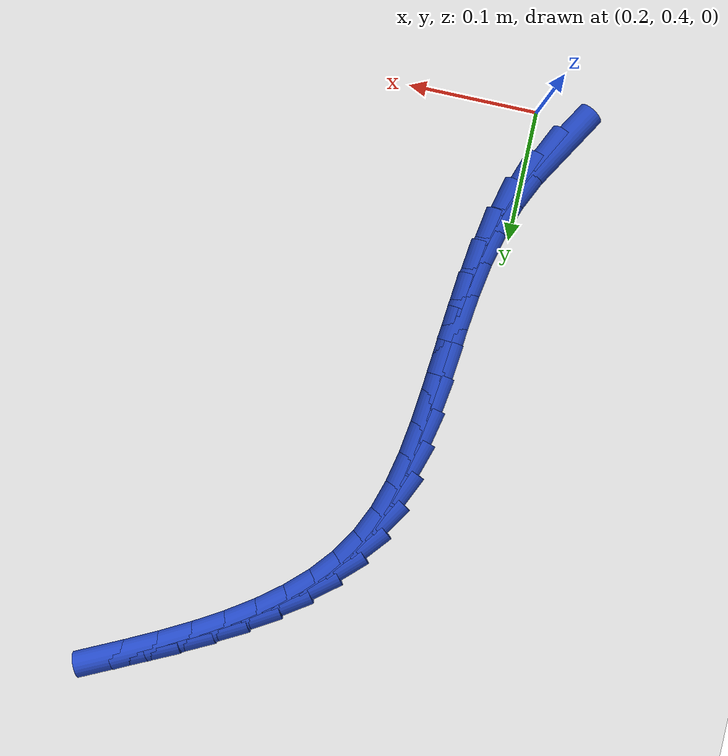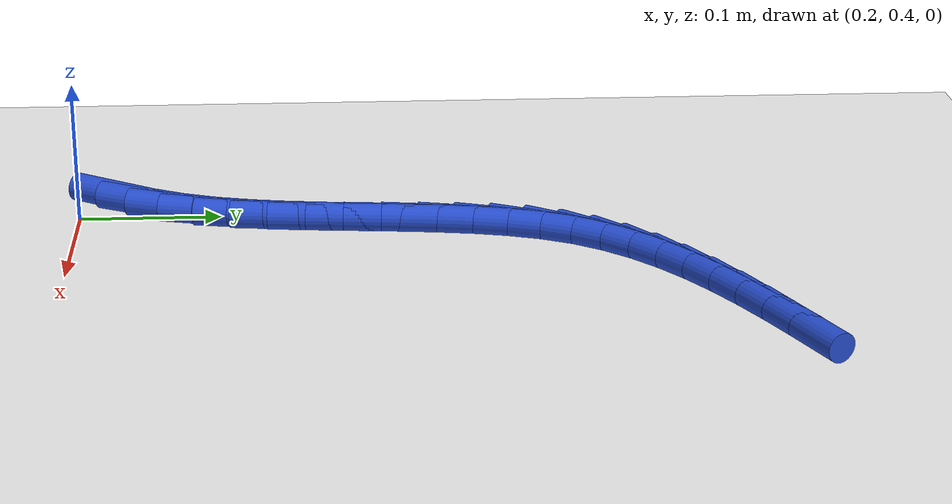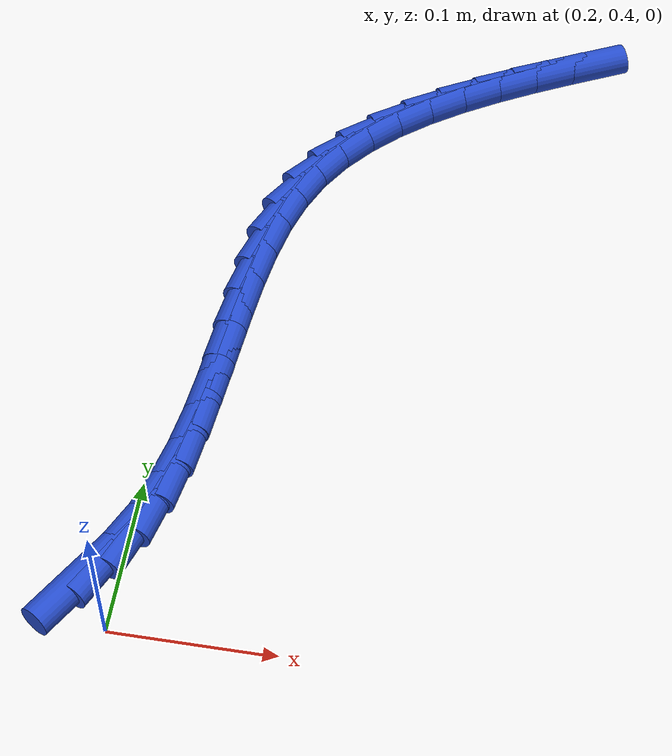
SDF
<sdf version="1.6">
 <world name="default">
  <model name="ground_plane">
   <static>1</static>
   <link name="link">
    <collision name="collision">
     <geometry><plane><normal>0 0 1</normal><size>100 100</size></plane></geometry>
     <surface><friction><ode><mu>100</mu><mu2>50</mu2></ode></friction></surface>
    </collision>
    <visual name="visual">
     <cast_shadows>0</cast_shadows>
     <geometry><plane><normal>0 0 1</normal><size>100 100</size></plane></geometry>
     <material>
      <script><uri>file://media/materials/scripts/gazebo.material</uri><name>Gazebo/WhiteGlow</name></script>
     </material>
    </visual>
   </link>
  </model>
  <model name="line">
   <link name="link_19">
    <pose>0.181550273171399 0.42856259229445404 0.01 0 1.57 1.0265691454415318</pose>
    <collision name="collision">
     <geometry><cylinder><radius>0.01</radius><length>0.08</length></cylinder></geometry>
    </collision>
    <visual name="visual">
     <material>
      <script><name>Gazebo/Blue</name><uri>file://media/materials/scripts/gazebo.material</uri></script>
     </material>
     <geometry><cylinder><radius>0.01</radius><length>0.08</length></cylinder></geometry>
    </visual>
   </link>
   <link name="link_20">
    <pose>0.19459256234999442 0.45011331534589893 0.01 0 1.57 1.1295042287333261</pose>
    <collision name="collision">
     <geometry><cylinder><radius>0.01</radius><length>0.08</length></cylinder></geometry>
    </collision>
    <visual name="visual">
     <material>
      <script><name>Gazebo/Blue</name><uri>file://media/materials/scripts/gazebo.material</uri></script>
     </material>
     <geometry><cylinder><radius>0.01</radius><length>0.08</length></cylinder></geometry>
    </visual>
   </link>
   <link name="link_21">
    <pose>0.20531575054510487 0.4728146217601626 0.01 0 1.57 1.2436033963603357</pose>
    <collision name="collision">
     <geometry><cylinder><radius>0.01</radius><length>0.08</length></cylinder></geometry>
    </collision>
    <visual name="visual">
     <material>
      <script><name>Gazebo/Blue</name><uri>file://media/materials/scripts/gazebo.material</uri></script>
     </material>
     <geometry><cylinder><radius>0.01</radius><length>0.08</length></cylinder></geometry>
    </visual>
   </link>
   <link name="link_22">
    <pose>0.213451697641281 0.4967867833108267 0.01 0 1.57 1.3380486251099197</pose>
    <collision name="collision">
     <geometry><cylinder><radius>0.01</radius><length>0.08</length></cylinder></geometry>
    </collision>
    <visual name="visual">
     <material>
      <script><name>Gazebo/Blue</name><uri>file://media/materials/scripts/gazebo.material</uri></script>
     </material>
     <geometry><cylinder><radius>0.01</radius><length>0.08</length></cylinder></geometry>
    </visual>
   </link>
   <link name="link_23">
    <pose>0.21938400579576403 0.5218130180876943 0.01 0 1.57 1.4073494618705584</pose>
    <collision name="collision">
     <geometry><cylinder><radius>0.01</radius><length>0.08</length></cylinder></geometry>
    </collision>
    <visual name="visual">
     <material>
      <script><name>Gazebo/Blue</name><uri>file://media/materials/scripts/gazebo.material</uri></script>
     </material>
     <geometry><cylinder><radius>0.01</radius><length>0.08</length></cylinder></geometry>
    </visual>
   </link>
   <link name="link_24">
    <pose>0.2236373378716247 0.5476035935181236 0.01 0 1.57 1.453349717159858</pose>
    <collision name="collision">
     <geometry><cylinder><radius>0.01</radius><length>0.08</length></cylinder></geometry>
    </collision>
    <visual name="visual">
     <material>
      <script><name>Gazebo/Blue</name><uri>file://media/materials/scripts/gazebo.material</uri></script>
     </material>
     <geometry><cylinder><radius>0.01</radius><length>0.08</length></cylinder></geometry>
    </visual>
   </link>
   <link name="link_25">
    <pose>0.2267363567319338 0.573868777029472 0.01 0 1.57 1.4777064991671223</pose>
    <collision name="collision">
     <geometry><cylinder><radius>0.01</radius><length>0.08</length></cylinder></geometry>
    </collision>
    <visual name="visual">
     <material>
      <script><name>Gazebo/Blue</name><uri>file://media/materials/scripts/gazebo.material</uri></script>
     </material>
     <geometry><cylinder><radius>0.01</radius><length>0.08</length></cylinder></geometry>
    </visual>
   </link>
   <link name="link_26">
    <pose>0.2292057252397621 0.600318836049098 0.01 0 1.57 1.4812899471059946</pose>
    <collision name="collision">
     <geometry><cylinder><radius>0.01</radius><length>0.08</length></cylinder></geometry>
    </collision>
    <visual name="visual">
     <material>
      <script><name>Gazebo/Blue</name><uri>file://media/materials/scripts/gazebo.material</uri></script>
     </material>
     <geometry><cylinder><radius>0.01</radius><length>0.08</length></cylinder></geometry>
    </visual>
   </link>
   <link name="link_27">
    <pose>0.23157010625818045 0.6266640380043592 0.01 0 1.57 1.463922223845543</pose>
    <collision name="collision">
     <geometry><cylinder><radius>0.01</radius><length>0.08</length></cylinder></geometry>
    </collision>
    <visual name="visual">
     <material>
      <script><name>Gazebo/Blue</name><uri>file://media/materials/scripts/gazebo.material</uri></script>
     </material>
     <geometry><cylinder><radius>0.01</radius><length>0.08</length></cylinder></geometry>
    </visual>
   </link>
   <link name="link_28">
    <pose>0.23435416265025946 0.6526146503226133 0.01 0 1.57 1.4242896303692543</pose>
    <collision name="collision">
     <geometry><cylinder><radius>0.01</radius><length>0.08</length></cylinder></geometry>
    </collision>
    <visual name="visual">
     <material>
      <script><name>Gazebo/Blue</name><uri>file://media/materials/scripts/gazebo.material</uri></script>
     </material>
     <geometry><cylinder><radius>0.01</radius><length>0.08</length></cylinder></geometry>
    </visual>
   </link>
   <link name="link_29">
    <pose>0.23808255727907013 0.6778809404312189 0.01 0 1.57 1.3600211578399588</pose>
    <collision name="collision">
     <geometry><cylinder><radius>0.01</radius><length>0.08</length></cylinder></geometry>
    </collision>
    <visual name="visual">
     <material>
      <script><name>Gazebo/Blue</name><uri>file://media/materials/scripts/gazebo.material</uri></script>
     </material>
     <geometry><cylinder><radius>0.01</radius><length>0.08</length></cylinder></geometry>
    </visual>
   </link>
   <link name="link_30">
    <pose>0.24327995300768301 0.7021731757575332 0.01 0 1.57 1.2681223451279466</pose>
    <collision name="collision">
     <geometry><cylinder><radius>0.01</radius><length>0.08</length></cylinder></geometry>
    </collision>
    <visual name="visual">
     <material>
      <script><name>Gazebo/Blue</name><uri>file://media/materials/scripts/gazebo.material</uri></script>
     </material>
     <geometry><cylinder><radius>0.01</radius><length>0.08</length></cylinder></geometry>
    </visual>
   </link>
   <link name="link_31">
    <pose>0.2504710126991691 0.7252016237289144 0.01 0 1.57 1.1461808343119926</pose>
    <collision name="collision">
     <geometry><cylinder><radius>0.01</radius><length>0.08</length></cylinder></geometry>
    </collision>
    <visual name="visual">
     <material>
      <script><name>Gazebo/Blue</name><uri>file://media/materials/scripts/gazebo.material</uri></script>
     </material>
     <geometry><cylinder><radius>0.01</radius><length>0.08</length></cylinder></geometry>
    </visual>
   </link>
   <link name="link_32">
    <pose>0.2601802850565578 0.7466766150641043 0.01 0 1.57 1.0037048574788439</pose>
    <collision name="collision">
     <geometry><cylinder><radius>0.01</radius><length>0.08</length></cylinder></geometry>
    </collision>
    <visual name="visual">
     <material>
      <script><name>Gazebo/Blue</name><uri>file://media/materials/scripts/gazebo.material</uri></script>
     </material>
     <geometry><cylinder><radius>0.01</radius><length>0.08</length></cylinder></geometry>
    </visual>
   </link>
   <link name="link_33">
    <pose>0.27274826976356265 0.7664105189619083 0.01 0 1.57 0.872362219551045</pose>
    <collision name="collision">
     <geometry><cylinder><radius>0.01</radius><length>0.08</length></cylinder></geometry>
    </collision>
    <visual name="visual">
     <material>
      <script><name>Gazebo/Blue</name><uri>file://media/materials/scripts/gazebo.material</uri></script>
     </material>
     <geometry><cylinder><radius>0.01</radius><length>0.08</length></cylinder></geometry>
    </visual>
   </link>
   <link name="link_34">
    <pose>0.28795750023784905 0.7845250462841665 0.01 0 1.57 0.760481119555493</pose>
    <collision name="collision">
     <geometry><cylinder><radius>0.01</radius><length>0.08</length></cylinder></geometry>
    </collision>
    <visual name="visual">
     <material>
      <script><name>Gazebo/Blue</name><uri>file://media/materials/scripts/gazebo.material</uri></script>
     </material>
     <geometry><cylinder><radius>0.01</radius><length>0.08</length></cylinder></geometry>
    </visual>
   </link>
   <link name="link_35">
    <pose>0.30548517366280903 0.8012003072761038 0.01 0 1.57 0.6683828949023575</pose>
    <collision name="collision">
     <geometry><cylinder><radius>0.01</radius><length>0.08</length></cylinder></geometry>
    </collision>
    <visual name="visual">
     <material>
      <script><name>Gazebo/Blue</name><uri>file://media/materials/scripts/gazebo.material</uri></script>
     </material>
     <geometry><cylinder><radius>0.01</radius><length>0.08</length></cylinder></geometry>
    </visual>
   </link>
   <link name="link_36">
    <pose>0.3250084872218347 0.8166164121829464 0.01 0 1.57 0.5947102658332788</pose>
    <collision name="collision">
     <geometry><cylinder><radius>0.01</radius><length>0.08</length></cylinder></geometry>
    </collision>
    <visual name="visual">
     <material>
      <script><name>Gazebo/Blue</name><uri>file://media/materials/scripts/gazebo.material</uri></script>
     </material>
     <geometry><cylinder><radius>0.01</radius><length>0.08</length></cylinder></geometry>
    </visual>
   </link>
   <link name="link_37">
    <pose>0.3462046380983184 0.8309534712499199 0.01 0 1.57 0.537492670768596</pose>
    <collision name="collision">
     <geometry><cylinder><radius>0.01</radius><length>0.08</length></cylinder></geometry>
    </collision>
    <visual name="visual">
     <material>
      <script><name>Gazebo/Blue</name><uri>file://media/materials/scripts/gazebo.material</uri></script>
     </material>
     <geometry><cylinder><radius>0.01</radius><length>0.08</length></cylinder></geometry>
    </visual>
   </link>
   <link name="link_38">
    <pose>0.3687508234756525 0.8443915947222497 0.01 0 1.57 0.4947933664515222</pose>
    <collision name="collision">
     <geometry><cylinder><radius>0.01</radius><length>0.08</length></cylinder></geometry>
    </collision>
    <visual name="visual">
     <material>
      <script><name>Gazebo/Blue</name><uri>file://media/materials/scripts/gazebo.material</uri></script>
     </material>
     <geometry><cylinder><radius>0.01</radius><length>0.08</length></cylinder></geometry>
    </visual>
   </link>
   <link name="link_39">
    <pose>0.39232424053722903 0.8571108928451616 0.01 0 1.57 0.46501944249125043</pose>
    <collision name="collision">
     <geometry><cylinder><radius>0.01</radius><length>0.08</length></cylinder></geometry>
    </collision>
    <visual name="visual">
     <material>
      <script><name>Gazebo/Blue</name><uri>file://media/materials/scripts/gazebo.material</uri></script>
     </material>
     <geometry><cylinder><radius>0.01</radius><length>0.08</length></cylinder></geometry>
    </visual>
   </link>
   <link name="link_40">
    <pose>0.41660208646644015 0.8692914758638816 0.01 0 1.57 0.4470397094712492</pose>
    <collision name="collision">
     <geometry><cylinder><radius>0.01</radius><length>0.08</length></cylinder></geometry>
    </collision>
    <visual name="visual">
     <material>
      <script><name>Gazebo/Blue</name><uri>file://media/materials/scripts/gazebo.material</uri></script>
     </material>
     <geometry><cylinder><radius>0.01</radius><length>0.08</length></cylinder></geometry>
    </visual>
   </link>
  </model>
 </world>
</sdf>
